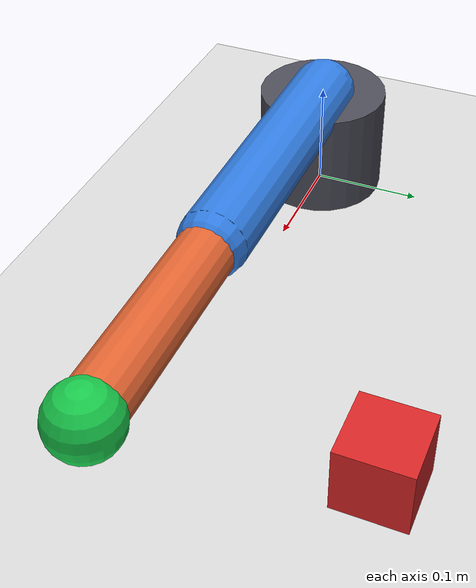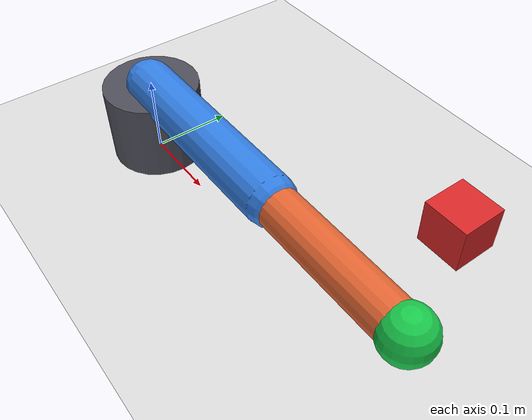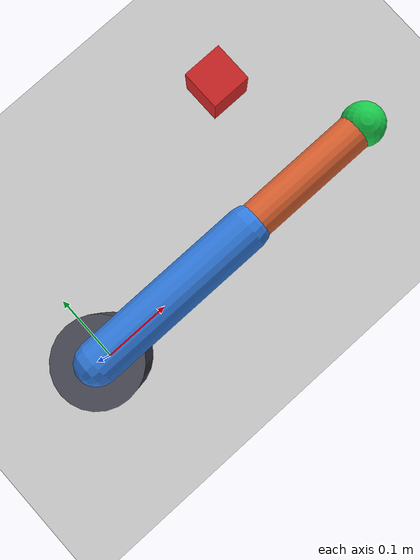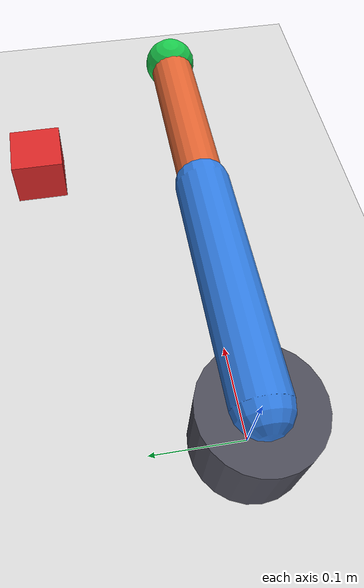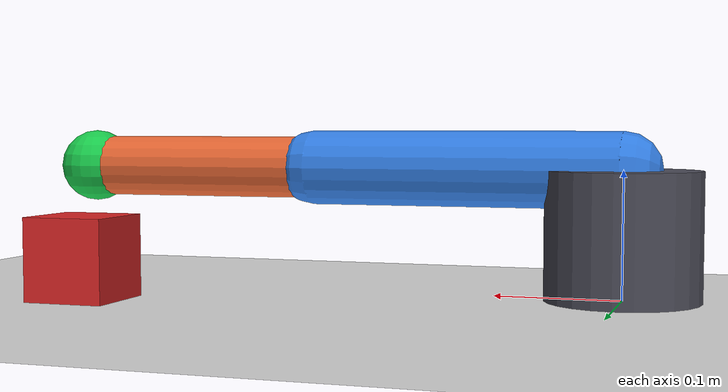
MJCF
<!--
  RobeWhisper 接触试机场景（第 13 期 · 步骤 1）
  在 builtin_arm2 平面臂基础上增加自由方块，供接触/接近度量。
  默认演示仍用 builtin_arm2；本文件需在网站模型下拉中显式选择。
  约定体名：object_block=试机物体；ee=末端探头几何（非工业夹爪）。
-->
<mujoco model="builtin_arm2_contact">
  <compiler angle="radian" coordinate="local"/>
  <option timestep="0.002" gravity="0 0 -9.81"/>

  <worldbody>
    <light pos="0 0 2" dir="0 0 -1"/>
    <geom name="floor" type="plane" size="1 1 0.05" rgba="0.85 0.85 0.85 1" friction="1 0.5 0.1"/>

    <!-- 基座 + 二自由度臂（与 builtin_arm2 同构，便于对照） -->
    <body name="base" pos="0 0 0.05">
      <geom name="base_geom" type="cylinder" size="0.06 0.05" rgba="0.3 0.3 0.35 1"/>

      <body name="link1" pos="0 0 0.05">
        <joint name="joint1" type="hinge" axis="0 0 1" range="-2.8 2.8" damping="0.5"/>
        <geom name="link1_geom" type="capsule" fromto="0 0 0 0.25 0 0" size="0.03" rgba="0.2 0.5 0.9 1" mass="1.0"/>

        <body name="link2" pos="0.25 0 0">
          <joint name="joint2" type="hinge" axis="0 0 1" range="-2.5 2.5" damping="0.4"/>
          <geom name="link2_geom" type="capsule" fromto="0 0 0 0.2 0 0" size="0.025" rgba="0.9 0.4 0.2 1" mass="0.6"/>
          <!-- 末端探头：教学用接触代理，不是真夹爪 -->
          <geom name="ee" type="sphere" pos="0.2 0 0" size="0.03" rgba="0.1 0.8 0.3 1" mass="0.05"
                friction="1.2 0.5 0.1"/>
        </body>
      </body>
    </body>

    <!-- 自由方块：放在默认 grab 示意姿态可达区（约 joint≈0.8/-0.6） -->
    <body name="object_block" pos="0.36 0.18 0.04">
      <freejoint name="object_free"/>
      <geom name="object_geom" type="box" size="0.03 0.03 0.03" rgba="0.85 0.15 0.15 1"
            mass="0.04" friction="1.5 0.5 0.1"/>
    </body>
  </worldbody>

  <actuator>
    <position name="act_joint1" joint="joint1" kp="40" ctrlrange="-2.8 2.8"/>
    <position name="act_joint2" joint="joint2" kp="30" ctrlrange="-2.5 2.5"/>
  </actuator>
</mujoco>
